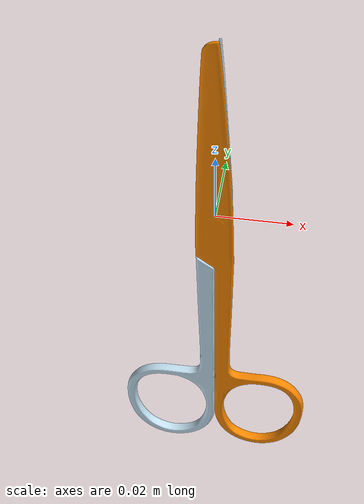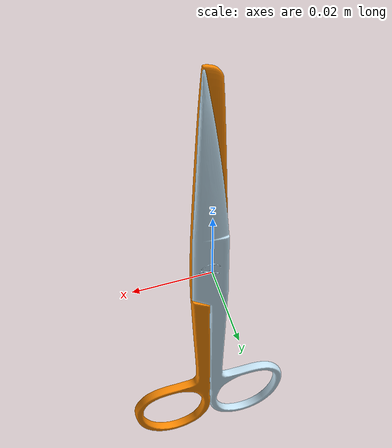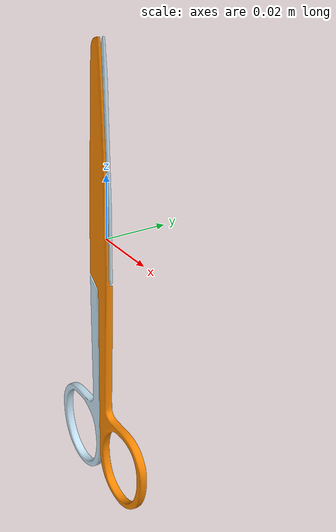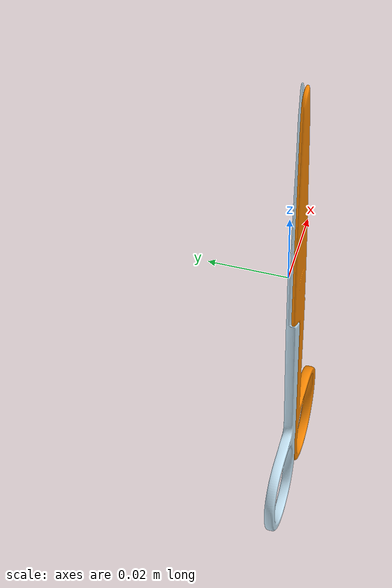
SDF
<sdf version="1.6">
<world name="world_demo">
<model name="onshape">
<link name="part2">
<frame name="part2_frame"><pose>0 0 0 0 -0 0</pose></frame>
<visual name="part2_0_part1_visual">
<pose>0 0 0 0 -0 0</pose>
<geometry>
<mesh><uri>file://part1.stl</uri></mesh>
</geometry>
<material><ambient>0.97254901960784312376 0.52941176470588235947 0.0039215686274509803377 1</ambient><diffuse>0.97254901960784312376 0.52941176470588235947 0.0039215686274509803377 1</diffuse><specular>0.1 0.1 0.1 1</specular><emissive>0 0 0 0</emissive></material>
</visual>
<collision name="part2_0_part1_visual">
<pose>0 0 0 0 -0 0</pose>
<geometry>
<mesh><uri>file://scissor/part1.stl</uri></mesh>
</geometry>
</collision>
<visual name="part2_1_part2_visual">
<pose>0 0 0 0 -0 0</pose>
<geometry>
<mesh><uri>file://part2.stl</uri></mesh>
</geometry>
<material><ambient>0.76862745098039220171 0.88627450980392152857 0.95294117647058818044 1</ambient><diffuse>0.76862745098039220171 0.88627450980392152857 0.95294117647058818044 1</diffuse><specular>0.1 0.1 0.1 1</specular><emissive>0 0 0 0</emissive></material>
</visual>
<collision name="part2_1_part2_visual">
<pose>0 0 0 0 -0 0</pose>
<geometry>
<mesh><uri>file://scissor/part2.stl</uri></mesh>
</geometry>
</collision>
<inertial>
<pose frame="part2_frame">0.00020544808610273440088 -0.0020292631430944125213 -0.029873148891268033744 0 0 0</pose>
<mass>0.027181887166858424709</mass>
<inertia><ixx>4.2134952109288532039e-05</ixx><ixy>-1.2675191389418623689e-09</ixy><ixz>4.4535942265730220591e-08</ixz><iyy>4.3939606915191531963e-05</iyy><iyz>5.3258910101831417696e-08</iyz><izz>1.8357248122909006162e-06</izz></inertia>
</inertial>
</link>

</model>
</world>
</sdf>
